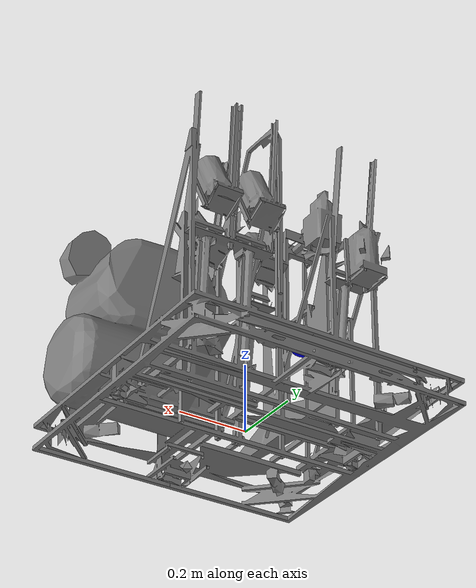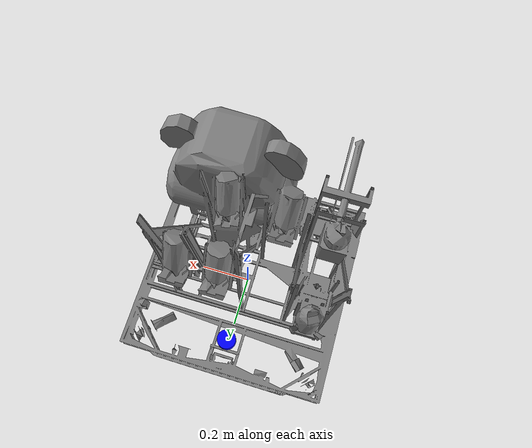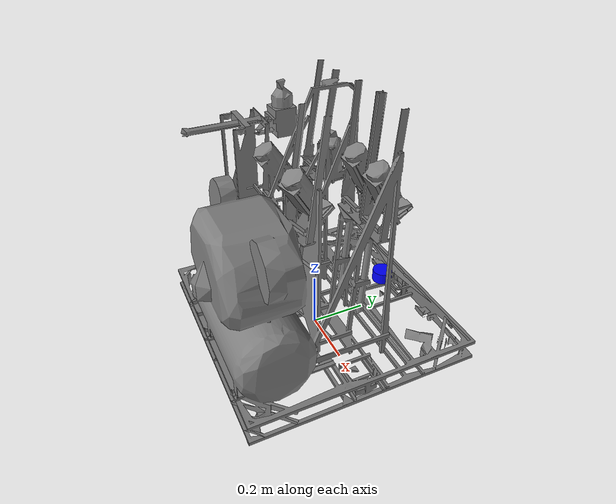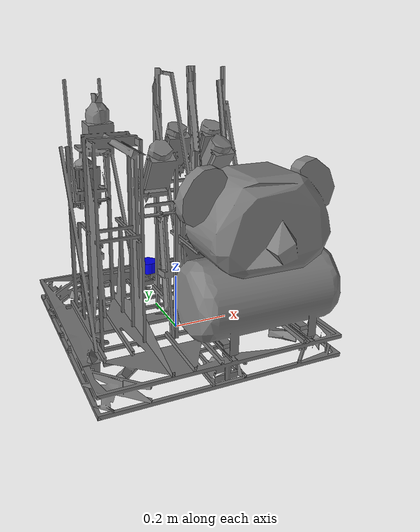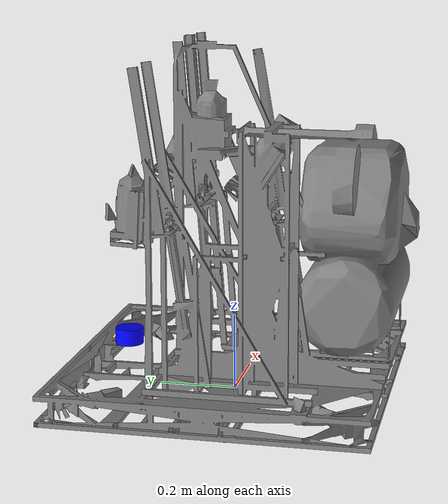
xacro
<?xml version="1.0" encoding="UTF-8"?>
<robot name="tsuten" xmlns:xacro="http://ros.org/wiki/xacro">
  <xacro:include filename="$(find tsuten_description)/urdf/lidar.urdf.xacro" />
  <xacro:include filename="$(find tsuten_description)/urdf/material.urdf.xacro" />
  <xacro:property name="body_visual_mesh_path" value="$(find tsuten_description)/meshes/tsuten.stl" />
  <xacro:property name="body_collision_mesh_path"
    value="$(find tsuten_description)/meshes/tsuten_lq.stl" />
  <xacro:property name="body_mass" value="30.0" />
  <xacro:property name="body_inertia_box_x" value="800.0e-3" />
  <xacro:property name="body_inertia_box_y" value="800.0e-3" />
  <xacro:property name="body_inertia_box_z" value="100.0e-3" />

  <link name="base_link" />
  <link name="body_link">
    <visual>
      <geometry>
        <mesh filename="${body_visual_mesh_path}" />
      </geometry>
      <material name="Grey" />
    </visual>
    <collision>
      <geometry>
        <mesh filename="${body_collision_mesh_path}" />
      </geometry>
    </collision>
    <inertial>
      <origin xyz="-30.69e-3 -3.279e-3 -242.3e-3" />
      <mass value="${body_mass}" />
      <inertia ixx="${body_mass*(body_inertia_box_y**2+body_inertia_box_z**2)/12}" ixy="0" ixz="0"
        iyy="${body_mass*(body_inertia_box_x**2+body_inertia_box_z**2)/12}" iyz="0"
        izz="${body_mass*(body_inertia_box_x**2+body_inertia_box_y**2)/12}" />
    </inertial>
  </link>
  <joint name="body_joint" type="fixed">
    <origin xyz="30.69e-3 3.279e-3 292.3e-3" rpy="0 0 0" />
    <axis xyz="0 0 1" />
    <parent link="base_link" />
    <child link="body_link" />
  </joint>
  <xacro:lidar parent="body_link">
    <origin xyz="-30.69e-3 283.7e-3 -164.8e-3" rpy="0 0 ${radians(90)}" />
  </xacro:lidar>

  <gazebo reference="body_link">
    <material>Gazebo/Grey</material>
    <mu1 value="0" />
    <mu2 value="0" />
  </gazebo>

  <gazebo>
    <plugin name="chassis_controller" filename="libgazebo_ros_planar_move.so">
      <commandTopic>cmd_vel</commandTopic>
      <cmdTimeout>-1</cmdTimeout>
      <odometryTopic>odom</odometryTopic>
      <odometryFrame>odom</odometryFrame>
      <odometryRate>20.0</odometryRate>
      <robotBaseFrame>base_link</robotBaseFrame>
    </plugin>
  </gazebo>
</robot>

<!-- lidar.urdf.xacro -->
<robot xmlns:xacro="http://ros.org/wiki/xacro">
  <xacro:macro name="lidar" params="parent *joint_origin">
    <xacro:property name="radius" value="0.037" />
    <xacro:property name="length" value="0.043" />
    <xacro:property name="mass" value="0.2" />
    <xacro:property name="visualize" value="true" />
    <xacro:property name="view_angle" value="220" />
    <xacro:property name="min_range" value="0.12" />
    <xacro:property name="max_range" value="12" />

    <link name="lidar_link">
      <visual>
        <geometry>
          <cylinder radius="${radius}" length="${length}" />
        </geometry>
        <material name="Blue" />
      </visual>
      <inertial>
        <origin xyz="0 0 0" />
        <mass value="${mass}" />
        <inertia ixx="${mass*(radius**2/4+length**2/12)}" ixy="0" ixz="0"
          iyy="${mass*(radius**2/4+length**2/12)}" iyz="0"
          izz="${mass*radius**2/2}" />
      </inertial>
    </link>
    <joint name="lidar_joint" type="fixed">
      <xacro:insert_block name="joint_origin" />
      <parent link="${parent}" />
      <child link="lidar_link" />
    </joint>
    <gazebo reference="lidar_link">
      <material>Gazebo/Blue</material>
      <sensor type="ray" name="lidar">
        <pose>0 0 0 0 0 0</pose>
        <visualize>${visualize}</visualize>
        <update_rate>10</update_rate>
        <ray>
          <scan>
            <horizontal>
              <samples>720</samples>
              <resolution>1</resolution>
              <min_angle>${radians(-view_angle/2)}</min_angle>
              <max_angle>${radians(view_angle/2)}</max_angle>
            </horizontal>
          </scan>
          <range>
            <min>${min_range}</min>
            <max>${max_range}</max>
            <resolution>0.01</resolution>
          </range>
        </ray>
        <plugin name="gazebo_ros_lidar_controller" filename="libgazebo_ros_laser.so">
          <topicName>/lidar/scan</topicName>
          <frameName>lidar_link</frameName>
        </plugin>
      </sensor>
    </gazebo>
  </xacro:macro>
</robot>

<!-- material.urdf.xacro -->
<robot xmlns:xacro="http://ros.org/wiki/xacro">
  <material name="Red">
    <color rgba="1.0 0.0 0.0 1.0" />
  </material>
  <material name="Green">
    <color rgba="0.0 1.0 0.0 1.0" />
  </material>
  <material name="Blue">
    <color rgba="0.0 0.0 1.0 1.0" />
  </material>
  <material name="Orange">
    <color rgba="1.0 0.6 0.0 1.0" />
  </material>
  <material name="Grey">
    <color rgba="0.5 0.5 0.5 1.0" />
  </material>
  <material name="Yellow">
    <color rgba="1.0 1.0 0.2 1.0" />
  </material>
  <material name="Black">
    <color rgba="0.0 0.0 0.0 1.0" />
  </material>
  <material name="White">
    <color rgba="1.0 1.0 1.0 1.0" />
  </material>
</robot>
